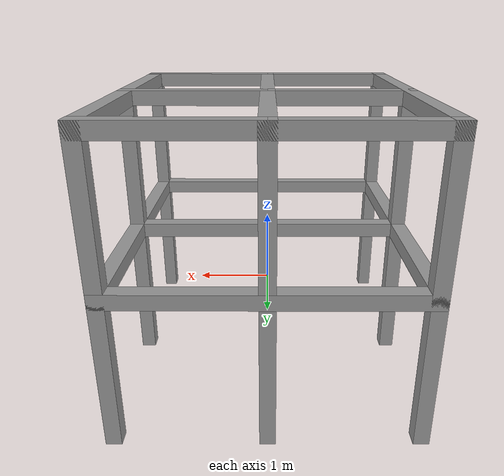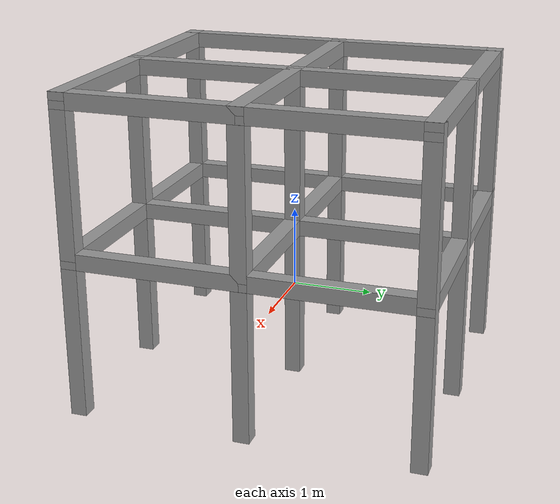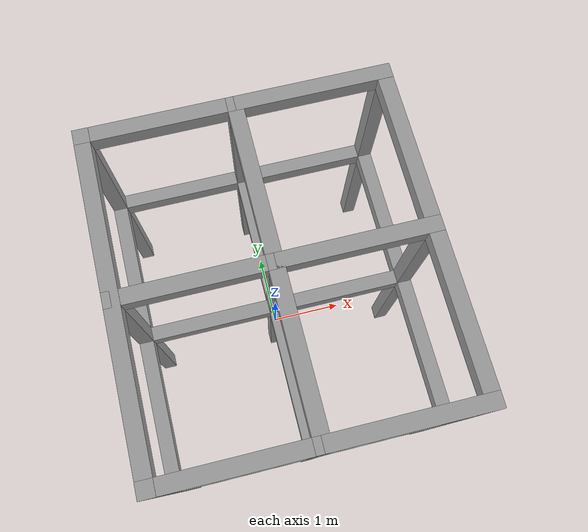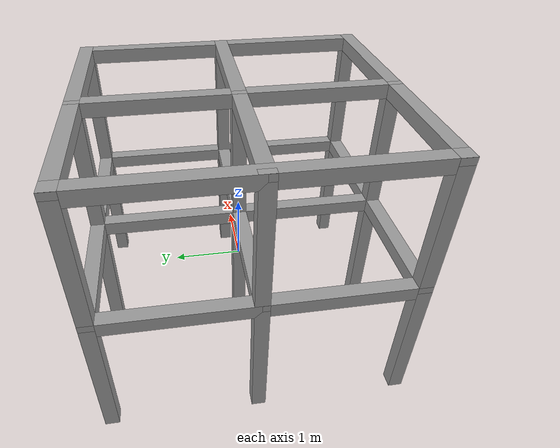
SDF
<sdf version="1.7">
 <world name="inspection_world">
  <physics name="default_physics" default="1" type="ode">
   <max_step_size>0.002</max_step_size>
   <real_time_factor>1</real_time_factor>
   <real_time_update_rate>500</real_time_update_rate>
   <ode>
    <solver>
     <type>quick</type>
     <iters>50</iters>
     <sor>0.5</sor>
     <use_dynamic_moi_rescaling>0</use_dynamic_moi_rescaling>
    </solver>
    <constraints>
     <cfm>0</cfm>
     <erp>0.2</erp>
     <contact_max_correcting_vel>100</contact_max_correcting_vel>
     <contact_surface_layer>0.001</contact_surface_layer>
    </constraints>
   </ode>
  </physics>
  <scene>
   <ambient>0.01 0.01 0.01 1</ambient>
   <shadows>0</shadows>
   <background>0.7 0.7 0.7 1</background>
   <grid>0</grid>
  </scene>
  <light name="sun" type="directional">
   <pose>0 0 10 0 -0 0</pose>
   <diffuse>1 1 1 1</diffuse>
   <specular>0.1 0.1 0.1 1</specular>
   <attenuation>
    <range>1000</range>
    <constant>0.9</constant>
    <linear>0.01</linear>
    <quadratic>0.001</quadratic>
   </attenuation>
   <direction>-0.5 -0.5 -1</direction>
   <spot><inner_angle>0</inner_angle><outer_angle>0</outer_angle><falloff>0</falloff></spot>
  </light>
  <light name="sun_diffuse" type="directional">
   <pose>0 0 -10 0 -0 0</pose>
   <diffuse>1 1 1 1</diffuse>
   <specular>0.3 0.3 0.3 1</specular>
   <attenuation>
    <range>1000</range>
    <constant>0.9</constant>
    <linear>0.01</linear>
    <quadratic>0.001</quadratic>
   </attenuation>
   <direction>0.5 0.5 -1</direction>
   <spot><inner_angle>0</inner_angle><outer_angle>0</outer_angle><falloff>0</falloff></spot>
  </light>
  <spherical_coordinates>
   <latitude_deg>57.0271</latitude_deg>
   <longitude_deg>-115.427</longitude_deg>
   <elevation>600</elevation>
   <heading_deg>0</heading_deg>
   <surface_model>EARTH_WGS84</surface_model>
  </spherical_coordinates>
  <gravity>0 0 -9.8</gravity>
  <magnetic_field>6e-06 2.3e-05 -4.2e-05</magnetic_field>
  <atmosphere type="adiabatic"/>
  <model name="reticular_structure">
   <link name="link_0">
    <inertial>
     <mass>1</mass>
     <inertia>
      <ixx>0.166667</ixx>
      <ixy>0</ixy>
      <ixz>0</ixz>
      <iyy>0.166667</iyy>
      <iyz>0</iyz>
      <izz>0.166667</izz>
     </inertia>
    </inertial>
    <visual name="visual">
     <geometry><box><size>0.2 0.2 4</size></box></geometry>
     <material>
      <lighting>1</lighting>
      <script><uri>file://media/materials/scripts/gazebo.material</uri><name>Gazebo/Grey</name></script>
      <shader type="pixel"><normal_map>__default__</normal_map></shader>
      <ambient>0.3 0.3 0.3 1</ambient>
      <diffuse>0.7 0.7 0.7 1</diffuse>
      <specular>0.01 0.01 0.01 1</specular>
      <emissive>0 0 0 1</emissive>
     </material>
     <laser_retro>1</laser_retro>
    </visual>
    <collision name="collision">
     <geometry><box><size>0.2 0.2 4</size></box></geometry>
     <surface>
      <friction>
       <ode><mu>1</mu><mu2>1</mu2><fdir1>0 0 0</fdir1><slip1>0</slip1><slip2>0</slip2></ode>
       <torsional>
        <coefficient>1</coefficient>
        <patch_radius>0</patch_radius>
        <surface_radius>0</surface_radius>
        <use_patch_radius>1</use_patch_radius>
        <ode><slip>0</slip></ode>
       </torsional>
      </friction>
      <bounce><restitution_coefficient>0</restitution_coefficient><threshold>1e+06</threshold></bounce>
      <contact>
       <collide_without_contact>0</collide_without_contact>
       <collide_without_contact_bitmask>1</collide_without_contact_bitmask>
       <collide_bitmask>1</collide_bitmask>
       <ode>
        <soft_cfm>0</soft_cfm>
        <soft_erp>0.2</soft_erp>
        <kp>1e+13</kp>
        <kd>1</kd>
        <max_vel>0.01</max_vel>
        <min_depth>0</min_depth>
       </ode>
       <bullet>
        <split_impulse>1</split_impulse>
        <split_impulse_penetration_threshold>-0.01</split_impulse_penetration_threshold>
        <soft_cfm>0</soft_cfm>
        <soft_erp>0.2</soft_erp>
        <kp>1e+13</kp>
        <kd>1</kd>
       </bullet>
      </contact>
     </surface>
    </collision>
   </link>
   <link name="link_0_clone">
    <inertial>
     <mass>1</mass>
     <inertia>
      <ixx>0.166667</ixx>
      <ixy>0</ixy>
      <ixz>0</ixz>
      <iyy>0.166667</iyy>
      <iyz>0</iyz>
      <izz>0.166667</izz>
     </inertia>
    </inertial>
    <pose>0 0 0 0 1.57 0</pose>
    <visual name="visual">
     <geometry><box><size>0.2 0.2 4</size></box></geometry>
     <material>
      <lighting>1</lighting>
      <script><uri>file://media/materials/scripts/gazebo.material</uri><name>Gazebo/Grey</name></script>
      <shader type="pixel"><normal_map>__default__</normal_map></shader>
      <ambient>0.3 0.3 0.3 1</ambient>
      <diffuse>0.7 0.7 0.7 1</diffuse>
      <specular>0.01 0.01 0.01 1</specular>
      <emissive>0 0 0 1</emissive>
     </material>
     <laser_retro>1</laser_retro>
    </visual>
    <collision name="collision">
     <geometry><box><size>0.2 0.2 4</size></box></geometry>
     <surface>
      <friction>
       <ode><mu>1</mu><mu2>1</mu2><fdir1>0 0 0</fdir1><slip1>0</slip1><slip2>0</slip2></ode>
       <torsional>
        <coefficient>1</coefficient>
        <patch_radius>0</patch_radius>
        <surface_radius>0</surface_radius>
        <use_patch_radius>1</use_patch_radius>
        <ode><slip>0</slip></ode>
       </torsional>
      </friction>
      <bounce><restitution_coefficient>0</restitution_coefficient><threshold>1e+06</threshold></bounce>
      <contact>
       <collide_without_contact>0</collide_without_contact>
       <collide_without_contact_bitmask>1</collide_without_contact_bitmask>
       <collide_bitmask>1</collide_bitmask>
       <ode>
        <soft_cfm>0</soft_cfm>
        <soft_erp>0.2</soft_erp>
        <kp>1e+13</kp>
        <kd>1</kd>
        <max_vel>0.01</max_vel>
        <min_depth>0</min_depth>
       </ode>
       <bullet>
        <split_impulse>1</split_impulse>
        <split_impulse_penetration_threshold>-0.01</split_impulse_penetration_threshold>
        <soft_cfm>0</soft_cfm>
        <soft_erp>0.2</soft_erp>
        <kp>1e+13</kp>
        <kd>1</kd>
       </bullet>
      </contact>
     </surface>
    </collision>
   </link>
   <link name="link_0_clone_0">
    <inertial>
     <mass>1</mass>
     <inertia>
      <ixx>0.166667</ixx>
      <ixy>0</ixy>
      <ixz>0</ixz>
      <iyy>0.166667</iyy>
      <iyz>0</iyz>
      <izz>0.166667</izz>
     </inertia>
    </inertial>
    <pose>-1.9 0 0 0 -0 0</pose>
    <visual name="visual">
     <geometry><box><size>0.2 0.2 4</size></box></geometry>
     <material>
      <lighting>1</lighting>
      <script><uri>file://media/materials/scripts/gazebo.material</uri><name>Gazebo/Grey</name></script>
      <shader type="pixel"><normal_map>__default__</normal_map></shader>
      <ambient>0.3 0.3 0.3 1</ambient>
      <diffuse>0.7 0.7 0.7 1</diffuse>
      <specular>0.01 0.01 0.01 1</specular>
      <emissive>0 0 0 1</emissive>
     </material>
     <laser_retro>1</laser_retro>
    </visual>
    <collision name="collision">
     <geometry><box><size>0.2 0.2 4</size></box></geometry>
     <surface>
      <friction>
       <ode><mu>1</mu><mu2>1</mu2><fdir1>0 0 0</fdir1><slip1>0</slip1><slip2>0</slip2></ode>
       <torsional>
        <coefficient>1</coefficient>
        <patch_radius>0</patch_radius>
        <surface_radius>0</surface_radius>
        <use_patch_radius>1</use_patch_radius>
        <ode><slip>0</slip></ode>
       </torsional>
      </friction>
      <bounce><restitution_coefficient>0</restitution_coefficient><threshold>1e+06</threshold></bounce>
      <contact>
       <collide_without_contact>0</collide_without_contact>
       <collide_without_contact_bitmask>1</collide_without_contact_bitmask>
       <collide_bitmask>1</collide_bitmask>
       <ode>
        <soft_cfm>0</soft_cfm>
        <soft_erp>0.2</soft_erp>
        <kp>1e+13</kp>
        <kd>1</kd>
        <max_vel>0.01</max_vel>
        <min_depth>0</min_depth>
       </ode>
       <bullet>
        <split_impulse>1</split_impulse>
        <split_impulse_penetration_threshold>-0.01</split_impulse_penetration_threshold>
        <soft_cfm>0</soft_cfm>
        <soft_erp>0.2</soft_erp>
        <kp>1e+13</kp>
        <kd>1</kd>
       </bullet>
      </contact>
     </surface>
    </collision>
   </link>
   <link name="link_0_clone_0_clone">
    <inertial>
     <mass>1</mass>
     <inertia>
      <ixx>0.166667</ixx>
      <ixy>0</ixy>
      <ixz>0</ixz>
      <iyy>0.166667</iyy>
      <iyz>0</iyz>
      <izz>0.166667</izz>
     </inertia>
    </inertial>
    <pose>1.9 0 0 0 -0 0</pose>
    <visual name="visual">
     <geometry><box><size>0.2 0.2 4</size></box></geometry>
     <material>
      <lighting>1</lighting>
      <script><uri>file://media/materials/scripts/gazebo.material</uri><name>Gazebo/Grey</name></script>
      <shader type="pixel"><normal_map>__default__</normal_map></shader>
      <ambient>0.3 0.3 0.3 1</ambient>
      <diffuse>0.7 0.7 0.7 1</diffuse>
      <specular>0.01 0.01 0.01 1</specular>
      <emissive>0 0 0 1</emissive>
     </material>
     <laser_retro>1</laser_retro>
    </visual>
    <collision name="collision">
     <geometry><box><size>0.2 0.2 4</size></box></geometry>
     <surface>
      <friction>
       <ode><mu>1</mu><mu2>1</mu2><fdir1>0 0 0</fdir1><slip1>0</slip1><slip2>0</slip2></ode>
       <torsional>
        <coefficient>1</coefficient>
        <patch_radius>0</patch_radius>
        <surface_radius>0</surface_radius>
        <use_patch_radius>1</use_patch_radius>
        <ode><slip>0</slip></ode>
       </torsional>
      </friction>
      <bounce><restitution_coefficient>0</restitution_coefficient><threshold>1e+06</threshold></bounce>
      <contact>
       <collide_without_contact>0</collide_without_contact>
       <collide_without_contact_bitmask>1</collide_without_contact_bitmask>
       <collide_bitmask>1</collide_bitmask>
       <ode>
        <soft_cfm>0</soft_cfm>
        <soft_erp>0.2</soft_erp>
        <kp>1e+13</kp>
        <kd>1</kd>
        <max_vel>0.01</max_vel>
        <min_depth>0</min_depth>
       </ode>
       <bullet>
        <split_impulse>1</split_impulse>
        <split_impulse_penetration_threshold>-0.01</split_impulse_penetration_threshold>
        <soft_cfm>0</soft_cfm>
        <soft_erp>0.2</soft_erp>
        <kp>1e+13</kp>
        <kd>1</kd>
       </bullet>
      </contact>
     </surface>
    </collision>
   </link>
   <link name="link_0_clone_0_clone_0">
    <inertial>
     <mass>1</mass>
     <inertia>
      <ixx>0.166667</ixx>
      <ixy>0</ixy>
      <ixz>0</ixz>
      <iyy>0.166667</iyy>
      <iyz>0</iyz>
      <izz>0.166667</izz>
     </inertia>
    </inertial>
    <pose>0 -2.1 0 0 -0 0</pose>
    <visual name="visual">
     <geometry><box><size>0.2 0.2 4</size></box></geometry>
     <material>
      <lighting>1</lighting>
      <script><uri>file://media/materials/scripts/gazebo.material</uri><name>Gazebo/Grey</name></script>
      <shader type="pixel"><normal_map>__default__</normal_map></shader>
      <ambient>0.3 0.3 0.3 1</ambient>
      <diffuse>0.7 0.7 0.7 1</diffuse>
      <specular>0.01 0.01 0.01 1</specular>
      <emissive>0 0 0 1</emissive>
     </material>
     <laser_retro>1</laser_retro>
    </visual>
    <collision name="collision">
     <geometry><box><size>0.2 0.2 4</size></box></geometry>
     <surface>
      <friction>
       <ode><mu>1</mu><mu2>1</mu2><fdir1>0 0 0</fdir1><slip1>0</slip1><slip2>0</slip2></ode>
       <torsional>
        <coefficient>1</coefficient>
        <patch_radius>0</patch_radius>
        <surface_radius>0</surface_radius>
        <use_patch_radius>1</use_patch_radius>
        <ode><slip>0</slip></ode>
       </torsional>
      </friction>
      <bounce><restitution_coefficient>0</restitution_coefficient><threshold>1e+06</threshold></bounce>
      <contact>
       <collide_without_contact>0</collide_without_contact>
       <collide_without_contact_bitmask>1</collide_without_contact_bitmask>
       <collide_bitmask>1</collide_bitmask>
       <ode>
        <soft_cfm>0</soft_cfm>
        <soft_erp>0.2</soft_erp>
        <kp>1e+13</kp>
        <kd>1</kd>
        <max_vel>0.01</max_vel>
        <min_depth>0</min_depth>
       </ode>
       <bullet>
        <split_impulse>1</split_impulse>
        <split_impulse_penetration_threshold>-0.01</split_impulse_penetration_threshold>
        <soft_cfm>0</soft_cfm>
        <soft_erp>0.2</soft_erp>
        <kp>1e+13</kp>
        <kd>1</kd>
       </bullet>
      </contact>
     </surface>
    </collision>
   </link>
   <link name="link_0_clone_0_clone_0_clone">
    <inertial>
     <mass>1</mass>
     <inertia>
      <ixx>0.166667</ixx>
      <ixy>0</ixy>
      <ixz>0</ixz>
      <iyy>0.166667</iyy>
      <iyz>0</iyz>
      <izz>0.166667</izz>
     </inertia>
    </inertial>
    <pose>1.9 -2.1 0 0 -0 0</pose>
    <visual name="visual">
     <geometry><box><size>0.2 0.2 4</size></box></geometry>
     <material>
      <lighting>1</lighting>
      <script><uri>file://media/materials/scripts/gazebo.material</uri><name>Gazebo/Grey</name></script>
      <shader type="pixel"><normal_map>__default__</normal_map></shader>
      <ambient>0.3 0.3 0.3 1</ambient>
      <diffuse>0.7 0.7 0.7 1</diffuse>
      <specular>0.01 0.01 0.01 1</specular>
      <emissive>0 0 0 1</emissive>
     </material>
     <laser_retro>1</laser_retro>
    </visual>
    <collision name="collision">
     <geometry><box><size>0.2 0.2 4</size></box></geometry>
     <surface>
      <friction>
       <ode><mu>1</mu><mu2>1</mu2><fdir1>0 0 0</fdir1><slip1>0</slip1><slip2>0</slip2></ode>
       <torsional>
        <coefficient>1</coefficient>
        <patch_radius>0</patch_radius>
        <surface_radius>0</surface_radius>
        <use_patch_radius>1</use_patch_radius>
        <ode><slip>0</slip></ode>
       </torsional>
      </friction>
      <bounce><restitution_coefficient>0</restitution_coefficient><threshold>1e+06</threshold></bounce>
      <contact>
       <collide_without_contact>0</collide_without_contact>
       <collide_without_contact_bitmask>1</collide_without_contact_bitmask>
       <collide_bitmask>1</collide_bitmask>
       <ode>
        <soft_cfm>0</soft_cfm>
        <soft_erp>0.2</soft_erp>
        <kp>1e+13</kp>
        <kd>1</kd>
        <max_vel>0.01</max_vel>
        <min_depth>0</min_depth>
       </ode>
       <bullet>
        <split_impulse>1</split_impulse>
        <split_impulse_penetration_threshold>-0.01</split_impulse_penetration_threshold>
        <soft_cfm>0</soft_cfm>
        <soft_erp>0.2</soft_erp>
        <kp>1e+13</kp>
        <kd>1</kd>
       </bullet>
      </contact>
     </surface>
    </collision>
   </link>
   <link name="link_0_clone_0_clone_0_clone_0">
    <inertial>
     <mass>1</mass>
     <inertia>
      <ixx>0.166667</ixx>
      <ixy>0</ixy>
      <ixz>0</ixz>
      <iyy>0.166667</iyy>
      <iyz>0</iyz>
      <izz>0.166667</izz>
     </inertia>
    </inertial>
    <pose>-1.9 -2.1 0 0 -0 0</pose>
    <visual name="visual">
     <geometry><box><size>0.2 0.2 4</size></box></geometry>
     <material>
      <lighting>1</lighting>
      <script><uri>file://media/materials/scripts/gazebo.material</uri><name>Gazebo/Grey</name></script>
      <shader type="pixel"><normal_map>__default__</normal_map></shader>
      <ambient>0.3 0.3 0.3 1</ambient>
      <diffuse>0.7 0.7 0.7 1</diffuse>
      <specular>0.01 0.01 0.01 1</specular>
      <emissive>0 0 0 1</emissive>
     </material>
     <laser_retro>1</laser_retro>
    </visual>
    <collision name="collision">
     <geometry><box><size>0.2 0.2 4</size></box></geometry>
     <surface>
      <friction>
       <ode><mu>1</mu><mu2>1</mu2><fdir1>0 0 0</fdir1><slip1>0</slip1><slip2>0</slip2></ode>
       <torsional>
        <coefficient>1</coefficient>
        <patch_radius>0</patch_radius>
        <surface_radius>0</surface_radius>
        <use_patch_radius>1</use_patch_radius>
        <ode><slip>0</slip></ode>
       </torsional>
      </friction>
      <bounce><restitution_coefficient>0</restitution_coefficient><threshold>1e+06</threshold></bounce>
      <contact>
       <collide_without_contact>0</collide_without_contact>
       <collide_without_contact_bitmask>1</collide_without_contact_bitmask>
       <collide_bitmask>1</collide_bitmask>
       <ode>
        <soft_cfm>0</soft_cfm>
        <soft_erp>0.2</soft_erp>
        <kp>1e+13</kp>
        <kd>1</kd>
        <max_vel>0.01</max_vel>
        <min_depth>0</min_depth>
       </ode>
       <bullet>
        <split_impulse>1</split_impulse>
        <split_impulse_penetration_threshold>-0.01</split_impulse_penetration_threshold>
        <soft_cfm>0</soft_cfm>
        <soft_erp>0.2</soft_erp>
        <kp>1e+13</kp>
        <kd>1</kd>
       </bullet>
      </contact>
     </surface>
    </collision>
   </link>
   <link name="link_0_clone_0_clone_0_clone_clone">
    <inertial>
     <mass>1</mass>
     <inertia>
      <ixx>0.166667</ixx>
      <ixy>0</ixy>
      <ixz>0</ixz>
      <iyy>0.166667</iyy>
      <iyz>0</iyz>
      <izz>0.166667</izz>
     </inertia>
    </inertial>
    <pose>1.9 2.1 0 0 -0 0</pose>
    <visual name="visual">
     <geometry><box><size>0.2 0.2 4</size></box></geometry>
     <material>
      <lighting>1</lighting>
      <script><uri>file://media/materials/scripts/gazebo.material</uri><name>Gazebo/Grey</name></script>
      <shader type="pixel"><normal_map>__default__</normal_map></shader>
      <ambient>0.3 0.3 0.3 1</ambient>
      <diffuse>0.7 0.7 0.7 1</diffuse>
      <specular>0.01 0.01 0.01 1</specular>
      <emissive>0 0 0 1</emissive>
     </material>
     <laser_retro>1</laser_retro>
    </visual>
    <collision name="collision">
     <geometry><box><size>0.2 0.2 4</size></box></geometry>
     <surface>
      <friction>
       <ode><mu>1</mu><mu2>1</mu2><fdir1>0 0 0</fdir1><slip1>0</slip1><slip2>0</slip2></ode>
       <torsional>
        <coefficient>1</coefficient>
        <patch_radius>0</patch_radius>
        <surface_radius>0</surface_radius>
        <use_patch_radius>1</use_patch_radius>
        <ode><slip>0</slip></ode>
       </torsional>
      </friction>
      <bounce><restitution_coefficient>0</restitution_coefficient><threshold>1e+06</threshold></bounce>
      <contact>
       <collide_without_contact>0</collide_without_contact>
       <collide_without_contact_bitmask>1</collide_without_contact_bitmask>
       <collide_bitmask>1</collide_bitmask>
       <ode>
        <soft_cfm>0</soft_cfm>
        <soft_erp>0.2</soft_erp>
        <kp>1e+13</kp>
        <kd>1</kd>
        <max_vel>0.01</max_vel>
        <min_depth>0</min_depth>
       </ode>
       <bullet>
        <split_impulse>1</split_impulse>
        <split_impulse_penetration_threshold>-0.01</split_impulse_penetration_threshold>
        <soft_cfm>0</soft_cfm>
        <soft_erp>0.2</soft_erp>
        <kp>1e+13</kp>
        <kd>1</kd>
       </bullet>
      </contact>
     </surface>
    </collision>
   </link>
   <link name="link_0_clone_0_clone_0_clone_clone_0">
    <inertial>
     <mass>1</mass>
     <inertia>
      <ixx>0.166667</ixx>
      <ixy>0</ixy>
      <ixz>0</ixz>
      <iyy>0.166667</iyy>
      <iyz>0</iyz>
      <izz>0.166667</izz>
     </inertia>
    </inertial>
    <pose>0 2.1 0 0 -0 0</pose>
    <visual name="visual">
     <geometry><box><size>0.2 0.2 4</size></box></geometry>
     <material>
      <lighting>1</lighting>
      <script><uri>file://media/materials/scripts/gazebo.material</uri><name>Gazebo/Grey</name></script>
      <shader type="pixel"><normal_map>__default__</normal_map></shader>
      <ambient>0.3 0.3 0.3 1</ambient>
      <diffuse>0.7 0.7 0.7 1</diffuse>
      <specular>0.01 0.01 0.01 1</specular>
      <emissive>0 0 0 1</emissive>
     </material>
     <laser_retro>1</laser_retro>
    </visual>
    <collision name="collision">
     <geometry><box><size>0.2 0.2 4</size></box></geometry>
     <surface>
      <friction>
       <ode><mu>1</mu><mu2>1</mu2><fdir1>0 0 0</fdir1><slip1>0</slip1><slip2>0</slip2></ode>
       <torsional>
        <coefficient>1</coefficient>
        <patch_radius>0</patch_radius>
        <surface_radius>0</surface_radius>
        <use_patch_radius>1</use_patch_radius>
        <ode><slip>0</slip></ode>
       </torsional>
      </friction>
      <bounce><restitution_coefficient>0</restitution_coefficient><threshold>1e+06</threshold></bounce>
      <contact>
       <collide_without_contact>0</collide_without_contact>
       <collide_without_contact_bitmask>1</collide_without_contact_bitmask>
       <collide_bitmask>1</collide_bitmask>
       <ode>
        <soft_cfm>0</soft_cfm>
        <soft_erp>0.2</soft_erp>
        <kp>1e+13</kp>
        <kd>1</kd>
        <max_vel>0.01</max_vel>
        <min_depth>0</min_depth>
       </ode>
       <bullet>
        <split_impulse>1</split_impulse>
        <split_impulse_penetration_threshold>-0.01</split_impulse_penetration_threshold>
        <soft_cfm>0</soft_cfm>
        <soft_erp>0.2</soft_erp>
        <kp>1e+13</kp>
        <kd>1</kd>
       </bullet>
      </contact>
     </surface>
    </collision>
   </link>
   <link name="link_0_clone_0_clone_0_clone_clone_0_clone">
    <inertial>
     <mass>1</mass>
     <inertia>
      <ixx>0.166667</ixx>
      <ixy>0</ixy>
      <ixz>0</ixz>
      <iyy>0.166667</iyy>
      <iyz>0</iyz>
      <izz>0.166667</izz>
     </inertia>
    </inertial>
    <pose>-1.9 2.1 0 0 -0 0</pose>
    <visual name="visual">
     <geometry><box><size>0.2 0.2 4</size></box></geometry>
     <material>
      <lighting>1</lighting>
      <script><uri>file://media/materials/scripts/gazebo.material</uri><name>Gazebo/Grey</name></script>
      <shader type="pixel"><normal_map>__default__</normal_map></shader>
      <ambient>0.3 0.3 0.3 1</ambient>
      <diffuse>0.7 0.7 0.7 1</diffuse>
      <specular>0.01 0.01 0.01 1</specular>
      <emissive>0 0 0 1</emissive>
     </material>
     <laser_retro>1</laser_retro>
    </visual>
    <collision name="collision">
     <geometry><box><size>0.2 0.2 4</size></box></geometry>
     <surface>
      <friction>
       <ode><mu>1</mu><mu2>1</mu2><fdir1>0 0 0</fdir1><slip1>0</slip1><slip2>0</slip2></ode>
       <torsional>
        <coefficient>1</coefficient>
        <patch_radius>0</patch_radius>
        <surface_radius>0</surface_radius>
        <use_patch_radius>1</use_patch_radius>
        <ode><slip>0</slip></ode>
       </torsional>
      </friction>
      <bounce><restitution_coefficient>0</restitution_coefficient><threshold>1e+06</threshold></bounce>
      <contact>
       <collide_without_contact>0</collide_without_contact>
       <collide_without_contact_bitmask>1</collide_without_contact_bitmask>
       <collide_bitmask>1</collide_bitmask>
       <ode>
        <soft_cfm>0</soft_cfm>
        <soft_erp>0.2</soft_erp>
        <kp>1e+13</kp>
        <kd>1</kd>
        <max_vel>0.01</max_vel>
        <min_depth>0</min_depth>
       </ode>
       <bullet>
        <split_impulse>1</split_impulse>
        <split_impulse_penetration_threshold>-0.01</split_impulse_penetration_threshold>
        <soft_cfm>0</soft_cfm>
        <soft_erp>0.2</soft_erp>
        <kp>1e+13</kp>
        <kd>1</kd>
       </bullet>
      </contact>
     </surface>
    </collision>
   </link>
   <link name="link_0_clone_clone">
    <inertial>
     <mass>1</mass>
     <inertia>
      <ixx>0.166667</ixx>
      <ixy>0</ixy>
      <ixz>0</ixz>
      <iyy>0.166667</iyy>
      <iyz>0</iyz>
      <izz>0.166667</izz>
     </inertia>
    </inertial>
    <pose>0 0 0 1.56994 1.57 -4.3e-05</pose>
    <visual name="visual">
     <geometry><box><size>0.2 0.2 4</size></box></geometry>
     <material>
      <lighting>1</lighting>
      <script><uri>file://media/materials/scripts/gazebo.material</uri><name>Gazebo/Grey</name></script>
      <shader type="pixel"><normal_map>__default__</normal_map></shader>
      <ambient>0.3 0.3 0.3 1</ambient>
      <diffuse>0.7 0.7 0.7 1</diffuse>
      <specular>0.01 0.01 0.01 1</specular>
      <emissive>0 0 0 1</emissive>
     </material>
     <laser_retro>1</laser_retro>
    </visual>
    <collision name="collision">
     <geometry><box><size>0.2 0.2 4</size></box></geometry>
     <surface>
      <friction>
       <ode><mu>1</mu><mu2>1</mu2><fdir1>0 0 0</fdir1><slip1>0</slip1><slip2>0</slip2></ode>
       <torsional>
        <coefficient>1</coefficient>
        <patch_radius>0</patch_radius>
        <surface_radius>0</surface_radius>
        <use_patch_radius>1</use_patch_radius>
        <ode><slip>0</slip></ode>
       </torsional>
      </friction>
      <bounce><restitution_coefficient>0</restitution_coefficient><threshold>1e+06</threshold></bounce>
      <contact>
       <collide_without_contact>0</collide_without_contact>
       <collide_without_contact_bitmask>1</collide_without_contact_bitmask>
       <collide_bitmask>1</collide_bitmask>
       <ode>
        <soft_cfm>0</soft_cfm>
        <soft_erp>0.2</soft_erp>
        <kp>1e+13</kp>
        <kd>1</kd>
        <max_vel>0.01</max_vel>
        <min_depth>0</min_depth>
       </ode>
       <bullet>
        <split_impulse>1</split_impulse>
        <split_impulse_penetration_threshold>-0.01</split_impulse_penetration_threshold>
        <soft_cfm>0</soft_cfm>
        <soft_erp>0.2</soft_erp>
        <kp>1e+13</kp>
        <kd>1</kd>
       </bullet>
      </contact>
     </surface>
    </collision>
   </link>
   <link name="link_0_clone_clone_0">
    <inertial>
     <mass>1</mass>
     <inertia>
      <ixx>0.166667</ixx>
      <ixy>0</ixy>
      <ixz>0</ixz>
      <iyy>0.166667</iyy>
      <iyz>0</iyz>
      <izz>0.166667</izz>
     </inertia>
    </inertial>
    <pose>0 -2.1 0 0 1.57 0</pose>
    <visual name="visual">
     <geometry><box><size>0.2 0.2 4</size></box></geometry>
     <material>
      <lighting>1</lighting>
      <script><uri>file://media/materials/scripts/gazebo.material</uri><name>Gazebo/Grey</name></script>
      <shader type="pixel"><normal_map>__default__</normal_map></shader>
      <ambient>0.3 0.3 0.3 1</ambient>
      <diffuse>0.7 0.7 0.7 1</diffuse>
      <specular>0.01 0.01 0.01 1</specular>
      <emissive>0 0 0 1</emissive>
     </material>
     <laser_retro>1</laser_retro>
    </visual>
    <collision name="collision">
     <geometry><box><size>0.2 0.2 4</size></box></geometry>
     <surface>
      <friction>
       <ode><mu>1</mu><mu2>1</mu2><fdir1>0 0 0</fdir1><slip1>0</slip1><slip2>0</slip2></ode>
       <torsional>
        <coefficient>1</coefficient>
        <patch_radius>0</patch_radius>
        <surface_radius>0</surface_radius>
        <use_patch_radius>1</use_patch_radius>
        <ode><slip>0</slip></ode>
       </torsional>
      </friction>
      <bounce><restitution_coefficient>0</restitution_coefficient><threshold>1e+06</threshold></bounce>
      <contact>
       <collide_without_contact>0</collide_without_contact>
       <collide_without_contact_bitmask>1</collide_without_contact_bitmask>
       <collide_bitmask>1</collide_bitmask>
       <ode>
        <soft_cfm>0</soft_cfm>
        <soft_erp>0.2</soft_erp>
        <kp>1e+13</kp>
        <kd>1</kd>
        <max_vel>0.01</max_vel>
        <min_depth>0</min_depth>
       </ode>
       <bullet>
        <split_impulse>1</split_impulse>
        <split_impulse_penetration_threshold>-0.01</split_impulse_penetration_threshold>
        <soft_cfm>0</soft_cfm>
        <soft_erp>0.2</soft_erp>
        <kp>1e+13</kp>
        <kd>1</kd>
       </bullet>
      </contact>
     </surface>
    </collision>
   </link>
   <link name="link_0_clone_clone_0_clone">
    <inertial>
     <mass>1</mass>
     <inertia>
      <ixx>0.166667</ixx>
      <ixy>0</ixy>
      <ixz>0</ixz>
      <iyy>0.166667</iyy>
      <iyz>0</iyz>
      <izz>0.166667</izz>
     </inertia>
    </inertial>
    <pose>0 2.1 0 0 1.57 0</pose>
    <visual name="visual">
     <geometry><box><size>0.2 0.2 4</size></box></geometry>
     <material>
      <lighting>1</lighting>
      <script><uri>file://media/materials/scripts/gazebo.material</uri><name>Gazebo/Grey</name></script>
      <shader type="pixel"><normal_map>__default__</normal_map></shader>
      <ambient>0.3 0.3 0.3 1</ambient>
      <diffuse>0.7 0.7 0.7 1</diffuse>
      <specular>0.01 0.01 0.01 1</specular>
      <emissive>0 0 0 1</emissive>
     </material>
     <laser_retro>1</laser_retro>
    </visual>
    <collision name="collision">
     <geometry><box><size>0.2 0.2 4</size></box></geometry>
     <surface>
      <friction>
       <ode><mu>1</mu><mu2>1</mu2><fdir1>0 0 0</fdir1><slip1>0</slip1><slip2>0</slip2></ode>
       <torsional>
        <coefficient>1</coefficient>
        <patch_radius>0</patch_radius>
        <surface_radius>0</surface_radius>
        <use_patch_radius>1</use_patch_radius>
        <ode><slip>0</slip></ode>
       </torsional>
      </friction>
      <bounce><restitution_coefficient>0</restitution_coefficient><threshold>1e+06</threshold></bounce>
      <contact>
       <collide_without_contact>0</collide_without_contact>
       <collide_without_contact_bitmask>1</collide_without_contact_bitmask>
       <collide_bitmask>1</collide_bitmask>
       <ode>
        <soft_cfm>0</soft_cfm>
        <soft_erp>0.2</soft_erp>
        <kp>1e+13</kp>
        <kd>1</kd>
        <max_vel>0.01</max_vel>
        <min_depth>0</min_depth>
       </ode>
       <bullet>
        <split_impulse>1</split_impulse>
        <split_impulse_penetration_threshold>-0.01</split_impulse_penetration_threshold>
        <soft_cfm>0</soft_cfm>
        <soft_erp>0.2</soft_erp>
        <kp>1e+13</kp>
        <kd>1</kd>
       </bullet>
      </contact>
     </surface>
    </collision>
   </link>
   <link name="link_0_clone_clone_0_clone_0">
    <inertial>
     <mass>1</mass>
     <inertia>
      <ixx>0.166667</ixx>
      <ixy>0</ixy>
      <ixz>0</ixz>
      <iyy>0.166667</iyy>
      <iyz>0</iyz>
      <izz>0.166667</izz>
     </inertia>
    </inertial>
    <pose>0 -2.1 1.9 0 1.57 0</pose>
    <visual name="visual">
     <geometry><box><size>0.2 0.2 4</size></box></geometry>
     <material>
      <lighting>1</lighting>
      <script><uri>file://media/materials/scripts/gazebo.material</uri><name>Gazebo/Grey</name></script>
      <shader type="pixel"><normal_map>__default__</normal_map></shader>
      <ambient>0.3 0.3 0.3 1</ambient>
      <diffuse>0.7 0.7 0.7 1</diffuse>
      <specular>0.01 0.01 0.01 1</specular>
      <emissive>0 0 0 1</emissive>
     </material>
     <laser_retro>1</laser_retro>
    </visual>
    <collision name="collision">
     <geometry><box><size>0.2 0.2 4</size></box></geometry>
     <surface>
      <friction>
       <ode><mu>1</mu><mu2>1</mu2><fdir1>0 0 0</fdir1><slip1>0</slip1><slip2>0</slip2></ode>
       <torsional>
        <coefficient>1</coefficient>
        <patch_radius>0</patch_radius>
        <surface_radius>0</surface_radius>
        <use_patch_radius>1</use_patch_radius>
        <ode><slip>0</slip></ode>
       </torsional>
      </friction>
      <bounce><restitution_coefficient>0</restitution_coefficient><threshold>1e+06</threshold></bounce>
      <contact>
       <collide_without_contact>0</collide_without_contact>
       <collide_without_contact_bitmask>1</collide_without_contact_bitmask>
       <collide_bitmask>1</collide_bitmask>
       <ode>
        <soft_cfm>0</soft_cfm>
        <soft_erp>0.2</soft_erp>
        <kp>1e+13</kp>
        <kd>1</kd>
        <max_vel>0.01</max_vel>
        <min_depth>0</min_depth>
       </ode>
       <bullet>
        <split_impulse>1</split_impulse>
        <split_impulse_penetration_threshold>-0.01</split_impulse_penetration_threshold>
        <soft_cfm>0</soft_cfm>
        <soft_erp>0.2</soft_erp>
        <kp>1e+13</kp>
        <kd>1</kd>
       </bullet>
      </contact>
     </surface>
    </collision>
   </link>
   <link name="link_0_clone_clone_0_clone_0_clone">
    <inertial>
     <mass>1</mass>
     <inertia>
      <ixx>0.166667</ixx>
      <ixy>0</ixy>
      <ixz>0</ixz>
      <iyy>0.166667</iyy>
      <iyz>0</iyz>
      <izz>0.166667</izz>
     </inertia>
    </inertial>
    <pose>0 0 1.9 0 1.57 0</pose>
    <visual name="visual">
     <geometry><box><size>0.2 0.2 4</size></box></geometry>
     <material>
      <lighting>1</lighting>
      <script><uri>file://media/materials/scripts/gazebo.material</uri><name>Gazebo/Grey</name></script>
      <shader type="pixel"><normal_map>__default__</normal_map></shader>
      <ambient>0.3 0.3 0.3 1</ambient>
      <diffuse>0.7 0.7 0.7 1</diffuse>
      <specular>0.01 0.01 0.01 1</specular>
      <emissive>0 0 0 1</emissive>
     </material>
     <laser_retro>1</laser_retro>
    </visual>
    <collision name="collision">
     <geometry><box><size>0.2 0.2 4</size></box></geometry>
     <surface>
      <friction>
       <ode><mu>1</mu><mu2>1</mu2><fdir1>0 0 0</fdir1><slip1>0</slip1><slip2>0</slip2></ode>
       <torsional>
        <coefficient>1</coefficient>
        <patch_radius>0</patch_radius>
        <surface_radius>0</surface_radius>
        <use_patch_radius>1</use_patch_radius>
        <ode><slip>0</slip></ode>
       </torsional>
      </friction>
      <bounce><restitution_coefficient>0</restitution_coefficient><threshold>1e+06</threshold></bounce>
      <contact>
       <collide_without_contact>0</collide_without_contact>
       <collide_without_contact_bitmask>1</collide_without_contact_bitmask>
       <collide_bitmask>1</collide_bitmask>
       <ode>
        <soft_cfm>0</soft_cfm>
        <soft_erp>0.2</soft_erp>
        <kp>1e+13</kp>
        <kd>1</kd>
        <max_vel>0.01</max_vel>
        <min_depth>0</min_depth>
       </ode>
       <bullet>
        <split_impulse>1</split_impulse>
        <split_impulse_penetration_threshold>-0.01</split_impulse_penetration_threshold>
        <soft_cfm>0</soft_cfm>
        <soft_erp>0.2</soft_erp>
        <kp>1e+13</kp>
        <kd>1</kd>
       </bullet>
      </contact>
     </surface>
    </collision>
   </link>
   <link name="link_0_clone_clone_0_clone_0_clone_clone">
    <inertial>
     <mass>1</mass>
     <inertia>
      <ixx>0.166667</ixx>
      <ixy>0</ixy>
      <ixz>0</ixz>
      <iyy>0.166667</iyy>
      <iyz>0</iyz>
      <izz>0.166667</izz>
     </inertia>
    </inertial>
    <pose>0 2.1 1.9 0 1.57 0</pose>
    <visual name="visual">
     <geometry><box><size>0.2 0.2 4</size></box></geometry>
     <material>
      <lighting>1</lighting>
      <script><uri>file://media/materials/scripts/gazebo.material</uri><name>Gazebo/Grey</name></script>
      <shader type="pixel"><normal_map>__default__</normal_map></shader>
      <ambient>0.3 0.3 0.3 1</ambient>
      <diffuse>0.7 0.7 0.7 1</diffuse>
      <specular>0.01 0.01 0.01 1</specular>
      <emissive>0 0 0 1</emissive>
     </material>
     <laser_retro>1</laser_retro>
    </visual>
    <collision name="collision">
     <geometry><box><size>0.2 0.2 4</size></box></geometry>
     <surface>
      <friction>
       <ode><mu>1</mu><mu2>1</mu2><fdir1>0 0 0</fdir1><slip1>0</slip1><slip2>0</slip2></ode>
       <torsional>
        <coefficient>1</coefficient>
        <patch_radius>0</patch_radius>
        <surface_radius>0</surface_radius>
        <use_patch_radius>1</use_patch_radius>
        <ode><slip>0</slip></ode>
       </torsional>
      </friction>
      <bounce><restitution_coefficient>0</restitution_coefficient><threshold>1e+06</threshold></bounce>
      <contact>
       <collide_without_contact>0</collide_without_contact>
       <collide_without_contact_bitmask>1</collide_without_contact_bitmask>
       <collide_bitmask>1</collide_bitmask>
       <ode>
        <soft_cfm>0</soft_cfm>
        <soft_erp>0.2</soft_erp>
        <kp>1e+13</kp>
        <kd>1</kd>
        <max_vel>0.01</max_vel>
        <min_depth>0</min_depth>
       </ode>
       <bullet>
        <split_impulse>1</split_impulse>
        <split_impulse_penetration_threshold>-0.01</split_impulse_penetration_threshold>
        <soft_cfm>0</soft_cfm>
        <soft_erp>0.2</soft_erp>
        <kp>1e+13</kp>
        <kd>1</kd>
       </bullet>
      </contact>
     </surface>
    </collision>
   </link>
   <link name="link_0_clone_clone_clone">
    <inertial>
     <mass>1</mass>
     <inertia>
      <ixx>0.166667</ixx>
      <ixy>0</ixy>
      <ixz>0</ixz>
      <iyy>0.166667</iyy>
      <iyz>0</iyz>
      <izz>0.166667</izz>
     </inertia>
    </inertial>
    <pose>-1.9 0 0 1.56987 1.57 -0.000117</pose>
    <visual name="visual">
     <geometry><box><size>0.2 0.2 4</size></box></geometry>
     <material>
      <lighting>1</lighting>
      <script><uri>file://media/materials/scripts/gazebo.material</uri><name>Gazebo/Grey</name></script>
      <shader type="pixel"><normal_map>__default__</normal_map></shader>
      <ambient>0.3 0.3 0.3 1</ambient>
      <diffuse>0.7 0.7 0.7 1</diffuse>
      <specular>0.01 0.01 0.01 1</specular>
      <emissive>0 0 0 1</emissive>
     </material>
     <laser_retro>1</laser_retro>
    </visual>
    <collision name="collision">
     <geometry><box><size>0.2 0.2 4</size></box></geometry>
     <surface>
      <friction>
       <ode><mu>1</mu><mu2>1</mu2><fdir1>0 0 0</fdir1><slip1>0</slip1><slip2>0</slip2></ode>
       <torsional>
        <coefficient>1</coefficient>
        <patch_radius>0</patch_radius>
        <surface_radius>0</surface_radius>
        <use_patch_radius>1</use_patch_radius>
        <ode><slip>0</slip></ode>
       </torsional>
      </friction>
      <bounce><restitution_coefficient>0</restitution_coefficient><threshold>1e+06</threshold></bounce>
      <contact>
       <collide_without_contact>0</collide_without_contact>
       <collide_without_contact_bitmask>1</collide_without_contact_bitmask>
       <collide_bitmask>1</collide_bitmask>
       <ode>
        <soft_cfm>0</soft_cfm>
        <soft_erp>0.2</soft_erp>
        <kp>1e+13</kp>
        <kd>1</kd>
        <max_vel>0.01</max_vel>
        <min_depth>0</min_depth>
       </ode>
       <bullet>
        <split_impulse>1</split_impulse>
        <split_impulse_penetration_threshold>-0.01</split_impulse_penetration_threshold>
        <soft_cfm>0</soft_cfm>
        <soft_erp>0.2</soft_erp>
        <kp>1e+13</kp>
        <kd>1</kd>
       </bullet>
      </contact>
     </surface>
    </collision>
   </link>
   <link name="link_0_clone_clone_clone_clone">
    <inertial>
     <mass>1</mass>
     <inertia>
      <ixx>0.166667</ixx>
      <ixy>0</ixy>
      <ixz>0</ixz>
      <iyy>0.166667</iyy>
      <iyz>0</iyz>
      <izz>0.166667</izz>
     </inertia>
    </inertial>
    <pose>1.9 0 0 1.56979 1.57 -0.000194</pose>
    <visual name="visual">
     <geometry><box><size>0.2 0.2 4</size></box></geometry>
     <material>
      <lighting>1</lighting>
      <script><uri>file://media/materials/scripts/gazebo.material</uri><name>Gazebo/Grey</name></script>
      <shader type="pixel"><normal_map>__default__</normal_map></shader>
      <ambient>0.3 0.3 0.3 1</ambient>
      <diffuse>0.7 0.7 0.7 1</diffuse>
      <specular>0.01 0.01 0.01 1</specular>
      <emissive>0 0 0 1</emissive>
     </material>
     <laser_retro>1</laser_retro>
    </visual>
    <collision name="collision">
     <geometry><box><size>0.2 0.2 4</size></box></geometry>
     <surface>
      <friction>
       <ode><mu>1</mu><mu2>1</mu2><fdir1>0 0 0</fdir1><slip1>0</slip1><slip2>0</slip2></ode>
       <torsional>
        <coefficient>1</coefficient>
        <patch_radius>0</patch_radius>
        <surface_radius>0</surface_radius>
        <use_patch_radius>1</use_patch_radius>
        <ode><slip>0</slip></ode>
       </torsional>
      </friction>
      <bounce><restitution_coefficient>0</restitution_coefficient><threshold>1e+06</threshold></bounce>
      <contact>
       <collide_without_contact>0</collide_without_contact>
       <collide_without_contact_bitmask>1</collide_without_contact_bitmask>
       <collide_bitmask>1</collide_bitmask>
       <ode>
        <soft_cfm>0</soft_cfm>
        <soft_erp>0.2</soft_erp>
        <kp>1e+13</kp>
        <kd>1</kd>
        <max_vel>0.01</max_vel>
        <min_depth>0</min_depth>
       </ode>
       <bullet>
        <split_impulse>1</split_impulse>
        <split_impulse_penetration_threshold>-0.01</split_impulse_penetration_threshold>
        <soft_cfm>0</soft_cfm>
        <soft_erp>0.2</soft_erp>
        <kp>1e+13</kp>
        <kd>1</kd>
       </bullet>
      </contact>
     </surface>
    </collision>
   </link>
   <link name="link_0_clone_clone_clone_clone_clone">
    <inertial>
     <mass>1</mass>
     <inertia>
      <ixx>0.166667</ixx>
      <ixy>0</ixy>
      <ixz>0</ixz>
      <iyy>0.166667</iyy>
      <iyz>0</iyz>
      <izz>0.166667</izz>
     </inertia>
    </inertial>
    <pose>1.9 0 1.9 1.56979 1.57 -0.000193</pose>
    <visual name="visual">
     <geometry><box><size>0.2 0.2 4</size></box></geometry>
     <material>
      <lighting>1</lighting>
      <script><uri>file://media/materials/scripts/gazebo.material</uri><name>Gazebo/Grey</name></script>
      <shader type="pixel"><normal_map>__default__</normal_map></shader>
      <ambient>0.3 0.3 0.3 1</ambient>
      <diffuse>0.7 0.7 0.7 1</diffuse>
      <specular>0.01 0.01 0.01 1</specular>
      <emissive>0 0 0 1</emissive>
     </material>
     <laser_retro>1</laser_retro>
    </visual>
    <collision name="collision">
     <geometry><box><size>0.2 0.2 4</size></box></geometry>
     <surface>
      <friction>
       <ode><mu>1</mu><mu2>1</mu2><fdir1>0 0 0</fdir1><slip1>0</slip1><slip2>0</slip2></ode>
       <torsional>
        <coefficient>1</coefficient>
        <patch_radius>0</patch_radius>
        <surface_radius>0</surface_radius>
        <use_patch_radius>1</use_patch_radius>
        <ode><slip>0</slip></ode>
       </torsional>
      </friction>
      <bounce><restitution_coefficient>0</restitution_coefficient><threshold>1e+06</threshold></bounce>
      <contact>
       <collide_without_contact>0</collide_without_contact>
       <collide_without_contact_bitmask>1</collide_without_contact_bitmask>
       <collide_bitmask>1</collide_bitmask>
       <ode>
        <soft_cfm>0</soft_cfm>
        <soft_erp>0.2</soft_erp>
        <kp>1e+13</kp>
        <kd>1</kd>
        <max_vel>0.01</max_vel>
        <min_depth>0</min_depth>
       </ode>
       <bullet>
        <split_impulse>1</split_impulse>
        <split_impulse_penetration_threshold>-0.01</split_impulse_penetration_threshold>
        <soft_cfm>0</soft_cfm>
        <soft_erp>0.2</soft_erp>
        <kp>1e+13</kp>
        <kd>1</kd>
       </bullet>
      </contact>
     </surface>
    </collision>
   </link>
   <link name="link_0_clone_clone_clone_clone_clone_clone">
    <inertial>
     <mass>1</mass>
     <inertia>
      <ixx>0.166667</ixx>
      <ixy>0</ixy>
      <ixz>0</ixz>
      <iyy>0.166667</iyy>
      <iyz>0</iyz>
      <izz>0.166667</izz>
     </inertia>
    </inertial>
    <pose>0 0 1.9 1.56979 1.57 -0.000192</pose>
    <visual name="visual">
     <geometry><box><size>0.2 0.2 4</size></box></geometry>
     <material>
      <lighting>1</lighting>
      <script><uri>file://media/materials/scripts/gazebo.material</uri><name>Gazebo/Grey</name></script>
      <shader type="pixel"><normal_map>__default__</normal_map></shader>
      <ambient>0.3 0.3 0.3 1</ambient>
      <diffuse>0.7 0.7 0.7 1</diffuse>
      <specular>0.01 0.01 0.01 1</specular>
      <emissive>0 0 0 1</emissive>
     </material>
     <laser_retro>1</laser_retro>
    </visual>
    <collision name="collision">
     <geometry><box><size>0.2 0.2 4</size></box></geometry>
     <surface>
      <friction>
       <ode><mu>1</mu><mu2>1</mu2><fdir1>0 0 0</fdir1><slip1>0</slip1><slip2>0</slip2></ode>
       <torsional>
        <coefficient>1</coefficient>
        <patch_radius>0</patch_radius>
        <surface_radius>0</surface_radius>
        <use_patch_radius>1</use_patch_radius>
        <ode><slip>0</slip></ode>
       </torsional>
      </friction>
      <bounce><restitution_coefficient>0</restitution_coefficient><threshold>1e+06</threshold></bounce>
      <contact>
       <collide_without_contact>0</collide_without_contact>
       <collide_without_contact_bitmask>1</collide_without_contact_bitmask>
       <collide_bitmask>1</collide_bitmask>
       <ode>
        <soft_cfm>0</soft_cfm>
        <soft_erp>0.2</soft_erp>
        <kp>1e+13</kp>
        <kd>1</kd>
        <max_vel>0.01</max_vel>
        <min_depth>0</min_depth>
       </ode>
       <bullet>
        <split_impulse>1</split_impulse>
        <split_impulse_penetration_threshold>-0.01</split_impulse_penetration_threshold>
        <soft_cfm>0</soft_cfm>
        <soft_erp>0.2</soft_erp>
        <kp>1e+13</kp>
        <kd>1</kd>
       </bullet>
      </contact>
     </surface>
    </collision>
   </link>
   <link name="link_0_clone_clone_clone_clone_clone_clone_0">
    <inertial>
     <mass>1</mass>
     <inertia>
      <ixx>0.166667</ixx>
      <ixy>0</ixy>
      <ixz>0</ixz>
      <iyy>0.166667</iyy>
      <iyz>0</iyz>
      <izz>0.166667</izz>
     </inertia>
    </inertial>
    <pose>-1.9 0 1.9 1.56979 1.57 -0.000192</pose>
    <visual name="visual">
     <geometry><box><size>0.2 0.2 4</size></box></geometry>
     <material>
      <lighting>1</lighting>
      <script><uri>file://media/materials/scripts/gazebo.material</uri><name>Gazebo/Grey</name></script>
      <shader type="pixel"><normal_map>__default__</normal_map></shader>
      <ambient>0.3 0.3 0.3 1</ambient>
      <diffuse>0.7 0.7 0.7 1</diffuse>
      <specular>0.01 0.01 0.01 1</specular>
      <emissive>0 0 0 1</emissive>
     </material>
     <laser_retro>1</laser_retro>
    </visual>
    <collision name="collision">
     <geometry><box><size>0.2 0.2 4</size></box></geometry>
     <surface>
      <friction>
       <ode><mu>1</mu><mu2>1</mu2><fdir1>0 0 0</fdir1><slip1>0</slip1><slip2>0</slip2></ode>
       <torsional>
        <coefficient>1</coefficient>
        <patch_radius>0</patch_radius>
        <surface_radius>0</surface_radius>
        <use_patch_radius>1</use_patch_radius>
        <ode><slip>0</slip></ode>
       </torsional>
      </friction>
      <bounce><restitution_coefficient>0</restitution_coefficient><threshold>1e+06</threshold></bounce>
      <contact>
       <collide_without_contact>0</collide_without_contact>
       <collide_without_contact_bitmask>1</collide_without_contact_bitmask>
       <collide_bitmask>1</collide_bitmask>
       <ode>
        <soft_cfm>0</soft_cfm>
        <soft_erp>0.2</soft_erp>
        <kp>1e+13</kp>
        <kd>1</kd>
        <max_vel>0.01</max_vel>
        <min_depth>0</min_depth>
       </ode>
       <bullet>
        <split_impulse>1</split_impulse>
        <split_impulse_penetration_threshold>-0.01</split_impulse_penetration_threshold>
        <soft_cfm>0</soft_cfm>
        <soft_erp>0.2</soft_erp>
        <kp>1e+13</kp>
        <kd>1</kd>
       </bullet>
      </contact>
     </surface>
    </collision>
   </link>
   <static>1</static>
   <pose>0 0 0.790652 0 -0 0</pose>
  </model>
 </world>
</sdf>
